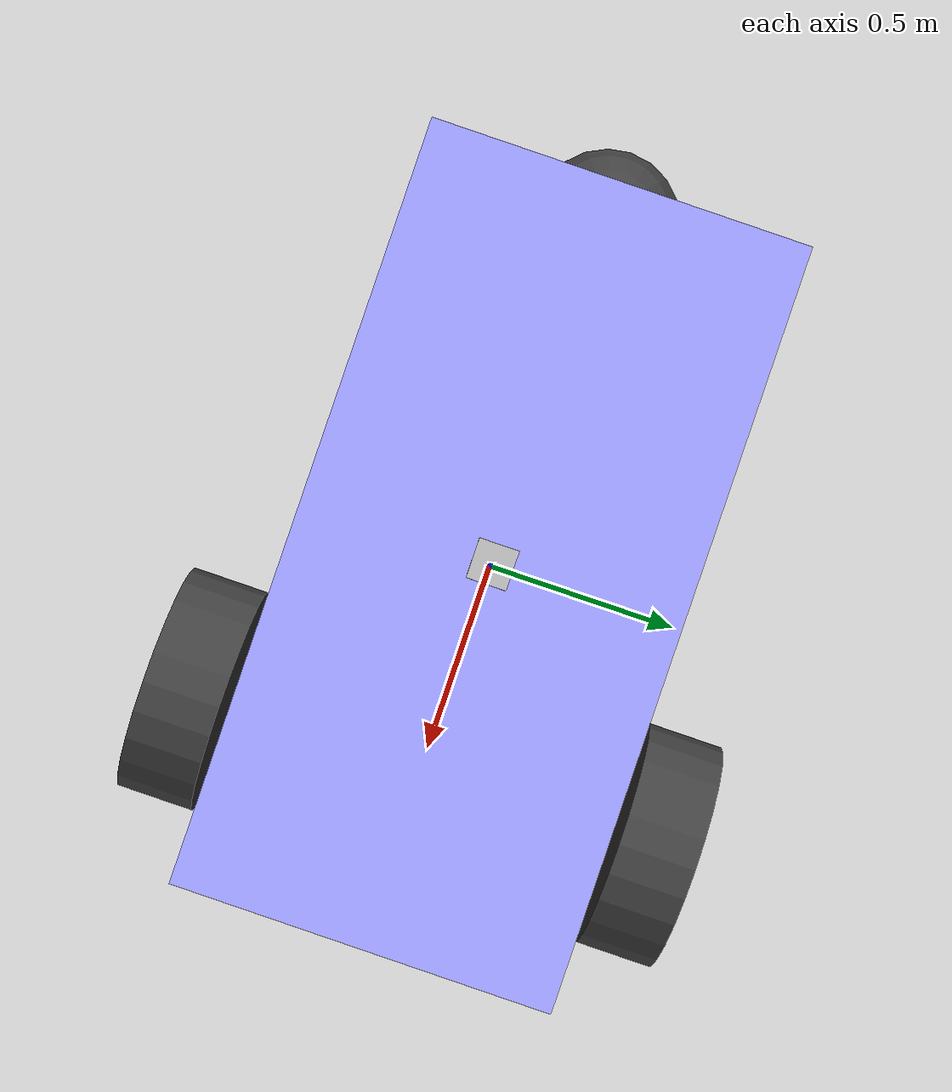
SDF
<sdf version='1.11'>
  <model name='diff_drive'>
    <link name='base_link'>
      <inertial>
        <pose>-0.42654158960761152 0 -0.033423204616858659 0 0 0</pose>
        <mass>2.2439499999999999</mass>
        <inertia>
          <ixx>0.26444892665373559</ixx>
          <ixy>0</ixy>
          <ixz>-0.08765163077942914</ixz>
          <iyy>1.062657913703885</iyy>
          <iyz>0</iyz>
          <izz>1.0890346540501501</izz>
        </inertia>
      </inertial>
      <collision name='base_link_fixed_joint_lump__chassis_collision'>
        <pose>0 0 0 0 0 0</pose>
        <geometry>
          <box>
            <size>2.0114200000000002 1 0.56872599999999995</size>
          </box>
        </geometry>
      </collision>
      <collision name='base_link_fixed_joint_lump__caster_collision_1'>
        <pose>-0.95713800000000004 0 -0.125 0 0 0</pose>
        <geometry>
          <sphere>
            <radius>0.20000000000000001</radius>
          </sphere>
        </geometry>
      </collision>
      <collision name='base_link_fixed_joint_lump__lidar_link_collision_2'>
        <pose>0 0 0.5 0 0 0</pose>
        <geometry>
          <box>
            <size>0.10000000000000001 0.10000000000000001 0.10000000000000001</size>
          </box>
        </geometry>
        <surface>
          <contact>
            <ode/>
          </contact>
          <friction>
            <ode/>
          </friction>
        </surface>
      </collision>
      <visual name='base_link_fixed_joint_lump__chassis_visual'>
        <pose>0 0 0 0 0 0</pose>
        <geometry>
          <box>
            <size>2.0114200000000002 1 0.56872599999999995</size>
          </box>
        </geometry>
        <material>
          <diffuse>0.625 0.625 1 1</diffuse>
          <ambient>0.625 0.625 1 1</ambient>
        </material>
      </visual>
      <visual name='base_link_fixed_joint_lump__caster_visual_1'>
        <pose>-0.95713800000000004 0 -0.125 0 0 0</pose>
        <geometry>
          <sphere>
            <radius>0.20000000000000001</radius>
          </sphere>
        </geometry>
        <material>
          <diffuse>0.25 0.25 0.25 1</diffuse>
          <ambient>0.25 0.25 0.25 1</ambient>
        </material>
      </visual>
      <visual name='base_link_fixed_joint_lump__lidar_link_visual_2'>
        <pose>0 0 0.5 0 0 0</pose>
        <geometry>
          <box>
            <size>0.10000000000000001 0.10000000000000001 0.10000000000000001</size>
          </box>
        </geometry>
      </visual>
      <sensor name='my_lidar' type='gpu_lidar'>
        <topic>/model/diff_drive_robot/scan</topic>
        <update_rate>10</update_rate>
        <lidar>
          <scan>
            <horizontal>
              <samples>640</samples>
              <resolution>1</resolution>
              <min_angle>-1.396263</min_angle>
              <max_angle>1.396263</max_angle>
            </horizontal>
            <vertical>
              <samples>1</samples>
              <resolution>1</resolution>
              <min_angle>0</min_angle>
              <max_angle>0</max_angle>
            </vertical>
          </scan>
          <range>
            <min>0.080000000000000002</min>
            <max>10</max>
            <resolution>0.01</resolution>
          </range>
        </lidar>
        <always_on>true</always_on>
        <visualize>true</visualize>
        <pose>0 0 0.5 0 0 0</pose>
        <gz_frame_id>diff_drive_robot/lidar_link</gz_frame_id>
      </sensor>
    </link>
    <joint name='left_wheel_joint' type='revolute'>
      <pose relative_to='base_link'>0.55428299999999997 0.62502899999999995 -0.025000000000000001 -1.5707 0 0</pose>
      <parent>base_link</parent>
      <child>left_wheel</child>
      <axis>
        <xyz>0 0 1</xyz>
        <limit>
          <lower>-1.7976900000000001e+308</lower>
          <upper>1.7976900000000001e+308</upper>
          <effort>1000</effort>
          <velocity>50</velocity>
        </limit>
        <dynamics>
          <spring_reference>0</spring_reference>
          <spring_stiffness>0</spring_stiffness>
        </dynamics>
      </axis>
    </joint>
    <link name='left_wheel'>
      <pose relative_to='left_wheel_joint'>0 0 0 0 0 0</pose>
      <inertial>
        <pose>0 0 0 0 0 0</pose>
        <mass>2</mass>
        <inertia>
          <ixx>0.14583299999999999</ixx>
          <ixy>0</ixy>
          <ixz>0</ixz>
          <iyy>0.14583299999999999</iyy>
          <iyz>0</iyz>
          <izz>0.125</izz>
        </inertia>
      </inertial>
      <collision name='left_wheel_fixed_joint_lump__wheel_collision_collision'>
        <pose>0 0 0 0 0 0</pose>
        <geometry>
          <cylinder>
            <length>0.20000000000000001</length>
            <radius>0.29999999999999999</radius>
          </cylinder>
        </geometry>
      </collision>
      <visual name='left_wheel_visual'>
        <pose>0 0 0 0 0 0</pose>
        <geometry>
          <cylinder>
            <length>0.20000000000000001</length>
            <radius>0.29999999999999999</radius>
          </cylinder>
        </geometry>
        <material>
          <diffuse>0.25 0.25 0.25 1</diffuse>
          <ambient>0.25 0.25 0.25 1</ambient>
        </material>
      </visual>
    </link>
    <joint name='right_wheel_joint' type='revolute'>
      <pose relative_to='base_link'>0.55428299999999997 -0.62502899999999995 -0.025000000000000001 -1.5707 0 0</pose>
      <parent>base_link</parent>
      <child>right_wheel</child>
      <axis>
        <xyz>0 0 1</xyz>
        <limit>
          <lower>-1.7976900000000001e+308</lower>
          <upper>1.7976900000000001e+308</upper>
          <effort>1000</effort>
          <velocity>50</velocity>
        </limit>
        <dynamics>
          <spring_reference>0</spring_reference>
          <spring_stiffness>0</spring_stiffness>
        </dynamics>
      </axis>
    </joint>
    <link name='right_wheel'>
      <pose relative_to='right_wheel_joint'>0 0 0 0 0 0</pose>
      <inertial>
        <pose>0 0 0 0 0 0</pose>
        <mass>2</mass>
        <inertia>
          <ixx>0.14583299999999999</ixx>
          <ixy>0</ixy>
          <ixz>0</ixz>
          <iyy>0.14583299999999999</iyy>
          <iyz>0</iyz>
          <izz>0.125</izz>
        </inertia>
      </inertial>
      <collision name='right_wheel_fixed_joint_lump__wheel_collision_collision'>
        <pose>0 0 0 0 0 0</pose>
        <geometry>
          <cylinder>
            <length>0.20000000000000001</length>
            <radius>0.29999999999999999</radius>
          </cylinder>
        </geometry>
      </collision>
      <visual name='right_wheel_visual'>
        <pose>0 0 0 0 0 0</pose>
        <geometry>
          <cylinder>
            <length>0.20000000000000001</length>
            <radius>0.29999999999999999</radius>
          </cylinder>
        </geometry>
        <material>
          <diffuse>0.25 0.25 0.25 1</diffuse>
          <ambient>0.25 0.25 0.25 1</ambient>
        </material>
      </visual>
    </link>
    <plugin name='gz::sim::systems::DiffDrive' filename='gz-sim8-diff-drive-system'>
      <left_joint>left_wheel_joint</left_joint>
      <right_joint>right_wheel_joint</right_joint>
      <wheel_separation>1.25</wheel_separation>
      <wheel_radius>0.3</wheel_radius>
      <odom_publish_frequency>1</odom_publish_frequency>
      <max_linear_acceleration>1</max_linear_acceleration>
      <min_linear_acceleration>-1</min_linear_acceleration>
      <max_angular_acceleration>2</max_angular_acceleration>
      <min_angular_acceleration>-2</min_angular_acceleration>
      <max_linear_velocity>20</max_linear_velocity>
      <min_linear_velocity>-20</min_linear_velocity>
      <max_angular_velocity>1</max_angular_velocity>
      <min_angular_velocity>-1</min_angular_velocity>
    </plugin>
    <plugin name='gz::sim::systems::JointStatePublisher' filename='gz-sim-joint-state-publisher-system'/>
    <plugin name='gz::sim::systems::OdometryPublisher' filename='gz-sim-odometry-publisher-system'>
      <odom_frame>diff_drive_robot/odom</odom_frame>
      <robot_base_frame>diff_drive_robot/base_link</robot_base_frame>
      <odom_publish_frequency>20</odom_publish_frequency>
    </plugin>
    <frame name='caster_wheel' attached_to='chassis'>
      <pose>-0.95713800000000004 0 -0.125 0 0 0</pose>
    </frame>
    <frame name='caster' attached_to='caster_wheel'>
      <pose>0 0 0 0 0 0</pose>
    </frame>
    <frame name='lidar_joint' attached_to='chassis'>
      <pose>0 0 0.5 0 0 0</pose>
    </frame>
    <frame name='lidar_link' attached_to='lidar_joint'>
      <pose>0 0 0 0 0 0</pose>
    </frame>
    <frame name='chassis_joint' attached_to='base_link'>
      <pose>0 0 0 0 0 0</pose>
    </frame>
    <frame name='chassis' attached_to='chassis_joint'>
      <pose>0 0 0 0 0 0</pose>
    </frame>
  </model>
</sdf>
